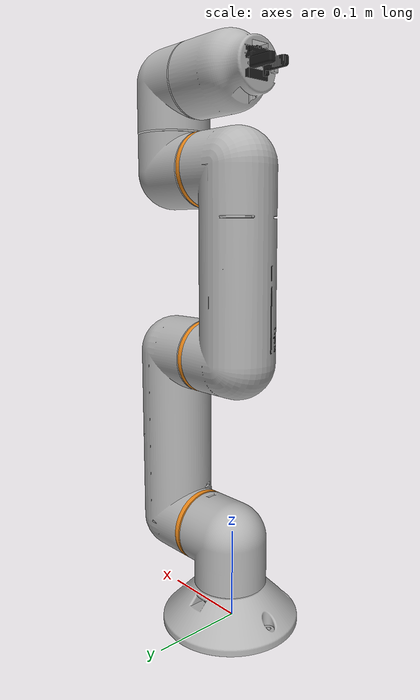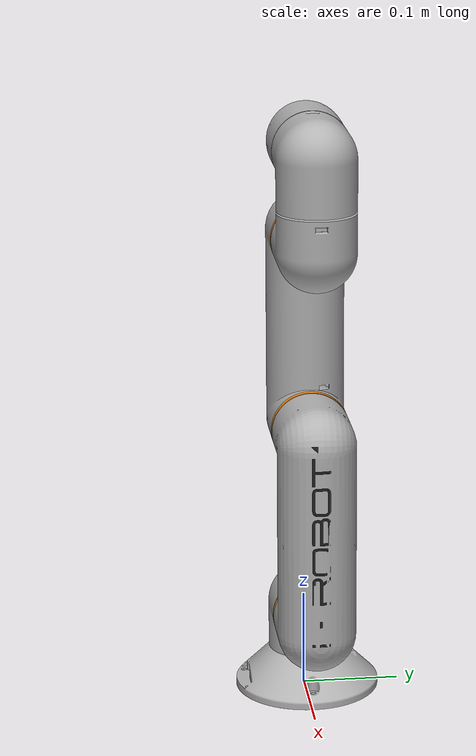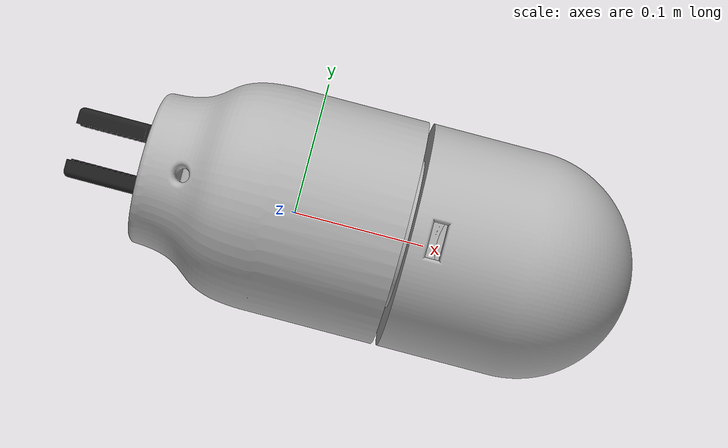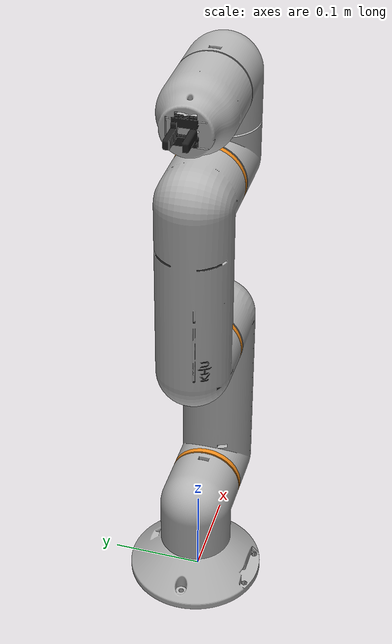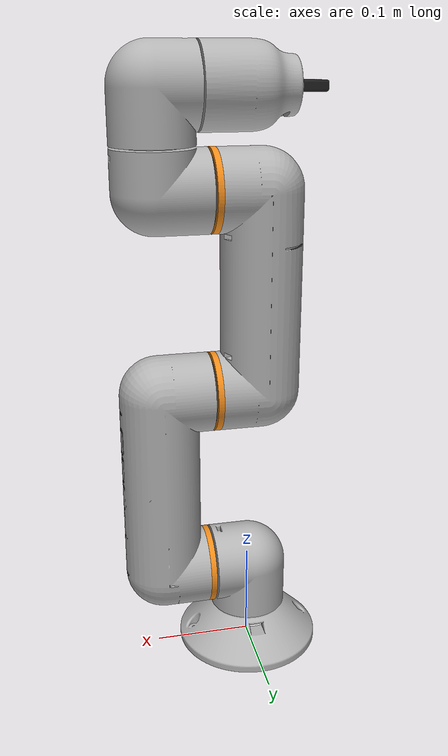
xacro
<?xml version="1.0" ?>
<robot name="6dof_gripper" xmlns:xacro="http://www.ros.org/wiki/xacro">

<xacro:include filename="$(find 6dof_description)/urdf/materials.xacro" />

<link name="base_link">
  <inertial>
    <origin xyz="0.0005722199975482752 0.004245800700454947 0.016568477430291967" rpy="0 0 0"/>
    <mass value="0.3701294923763933"/>
    <inertia ixx="0.000519" iyy="0.000543" izz="0.000945" ixy="3e-06" iyz="4e-06" ixz="0.0"/>
  </inertial>
  <visual>
    <origin xyz="0 0 0" rpy="0 0 0"/>
    <geometry>
      <mesh filename="package://6dof_description/meshes/base_link.stl" scale="0.001 0.001 0.001"/>
    </geometry>
    <material name="silver"/>
  </visual>
  <collision>
    <origin xyz="0 0 0" rpy="0 0 0"/>
    <geometry>
      <mesh filename="package://6dof_description/meshes/base_link.stl" scale="0.001 0.001 0.001"/>
    </geometry>
  </collision>
</link>

<link name="r_a_1">
  <inertial>
    <origin xyz="0.010425618761527602 0.0009926626669589911 0.03864859993028837" rpy="0 0 0"/>
    <mass value="0.17693816222578793"/>
    <inertia ixx="0.000227" iyy="0.000235" izz="0.00022" ixy="-1e-06" iyz="-1e-06" ixz="-2.3e-05"/>
  </inertial>
  <visual>
    <origin xyz="-0.0 -0.002984 -0.041554" rpy="0 0 0"/>
    <geometry>
      <mesh filename="package://6dof_description/meshes/r_a_1.stl" scale="0.001 0.001 0.001"/>
    </geometry>
    <material name="silver"/>
  </visual>
  <collision>
    <origin xyz="-0.0 -0.002984 -0.041554" rpy="0 0 0"/>
    <geometry>
      <mesh filename="package://6dof_description/meshes/r_a_1.stl" scale="0.001 0.001 0.001"/>
    </geometry>
  </collision>
</link>

<link name="link_1">
  <inertial>
    <origin xyz="0.0362299468747642 1.3495541677207516e-05 0.10093907219024545" rpy="0 0 0"/>
    <mass value="0.42379993240155933"/>
    <inertia ixx="0.003229" iyy="0.003244" izz="0.000556" ixy="0.0" iyz="0.0" ixz="4.5e-05"/>
  </inertial>
  <visual>
    <origin xyz="-0.04 -0.002984 -0.092054" rpy="0 0 0"/>
    <geometry>
      <mesh filename="package://6dof_description/meshes/link_1_engraved.stl" scale="0.001 0.001 0.001"/>
    </geometry>
    <material name="silver"/>
  </visual>
  <visual>
    <origin xyz="-0.04 -0.002984 -0.092054" rpy="0 0 0"/>
    <geometry>
      <mesh filename="package://6dof_description/meshes/link_1_engraving.stl" scale="0.001 0.001 0.001"/>
    </geometry>
    <material name="black"/>
  </visual>
  <visual>
    <origin xyz="-0.04 -0.002984 -0.092054" rpy="0 0 0"/>
    <geometry>
      <mesh filename="package://6dof_description/meshes/link_1_ring.stl" scale="0.001 0.001 0.001"/>
    </geometry>
    <material name="orange"/>
  </visual>
  <collision>
    <origin xyz="-0.04 -0.002984 -0.092054" rpy="0 0 0"/>
    <geometry>
      <mesh filename="package://6dof_description/meshes/link_1_engraved.stl" scale="0.001 0.001 0.001"/>
    </geometry>
  </collision>
  <collision>
    <origin xyz="-0.04 -0.002984 -0.092054" rpy="0 0 0"/>
    <geometry>
      <mesh filename="package://6dof_description/meshes/link_1_ring.stl" scale="0.001 0.001 0.001"/>
    </geometry>
  </collision>
</link>

<link name="link__1__1">
  <inertial>
    <origin xyz="-0.03622994687477521 -1.3274643730027368e-05 0.10093907219023918" rpy="0 0 0"/>
    <mass value="0.42379993240155933"/>
    <inertia ixx="0.003229" iyy="0.003244" izz="0.000556" ixy="0.0" iyz="-0.0" ixz="-4.5e-05"/>
  </inertial>
  <visual>
    <origin xyz="-0.04 -0.002984 -0.292054" rpy="0 0 0"/>
    <geometry>
      <mesh filename="package://6dof_description/meshes/link__1__1_engraved.stl" scale="0.001 0.001 0.001"/>
    </geometry>
    <material name="silver"/>
  </visual>
  <visual>
    <origin xyz="-0.04 -0.002984 -0.292054" rpy="0 0 0"/>
    <geometry>
      <mesh filename="package://6dof_description/meshes/link__1__1_engraving.stl" scale="0.001 0.001 0.001"/>
    </geometry>
    <material name="black"/>
  </visual>
  <visual>
    <origin xyz="-0.04 -0.002984 -0.292054" rpy="0 0 0"/>
    <geometry>
      <mesh filename="package://6dof_description/meshes/link__1__1_ring.stl" scale="0.001 0.001 0.001"/>
    </geometry>
    <material name="orange"/>
  </visual>
  <collision>
    <origin xyz="-0.04 -0.002984 -0.292054" rpy="0 0 0"/>
    <geometry>
      <mesh filename="package://6dof_description/meshes/link__1__1_engraved.stl" scale="0.001 0.001 0.001"/>
    </geometry>
  </collision>
  <collision>
    <origin xyz="-0.04 -0.002984 -0.292054" rpy="0 0 0"/>
    <geometry>
      <mesh filename="package://6dof_description/meshes/link__1__1_ring.stl" scale="0.001 0.001 0.001"/>
    </geometry>
  </collision>
</link>

<link name="r_a__1__1">
  <inertial>
    <origin xyz="0.03864887449338581 -0.0009924417690017292 0.010425344198421005" rpy="0 0 0"/>
    <mass value="0.17693816222578793"/>
    <inertia ixx="0.00022" iyy="0.000235" izz="0.000227" ixy="1e-06" iyz="1e-06" ixz="-2.3e-05"/>
  </inertial>
  <visual>
    <origin xyz="-0.04 -0.002984 -0.492054" rpy="0 0 0"/>
    <geometry>
      <mesh filename="package://6dof_description/meshes/r_a__1__1.stl" scale="0.001 0.001 0.001"/>
    </geometry>
    <material name="silver"/>
  </visual>
  <collision>
    <origin xyz="-0.04 -0.002984 -0.492054" rpy="0 0 0"/>
    <geometry>
      <mesh filename="package://6dof_description/meshes/r_a__1__1.stl" scale="0.001 0.001 0.001"/>
    </geometry>
  </collision>
</link>

<link name="r_a__2__1">
  <inertial>
    <origin xyz="-0.010425618761524535 -0.0009924417689934207 0.03864859993027925" rpy="0 0 0"/>
    <mass value="0.17693816222578793"/>
    <inertia ixx="0.000227" iyy="0.000235" izz="0.00022" ixy="-1e-06" iyz="1e-06" ixz="2.3e-05"/>
  </inertial>
  <visual>
    <origin xyz="-0.0905 -0.002984 -0.532054" rpy="0 0 0"/>
    <geometry>
      <mesh filename="package://6dof_description/meshes/r_a__2__1.stl" scale="0.001 0.001 0.001"/>
    </geometry>
    <material name="silver"/>
  </visual>
  <collision>
    <origin xyz="-0.0905 -0.002984 -0.532054" rpy="0 0 0"/>
    <geometry>
      <mesh filename="package://6dof_description/meshes/r_a__2__1.stl" scale="0.001 0.001 0.001"/>
    </geometry>
  </collision>
</link>

<link name="housing_1">
  <!-- housing_1.stl removed; fixed gripper (gripper.stl) on the same link, generated by pinch_sim.build_scene -->
  <inertial>
    <origin xyz="-0.045855 0.000223 -0.000017" rpy="0 0 0"/>
    <mass value="0.220000"/>
    <inertia ixx="0.000143708" iyy="0.000185703" izz="0.000184536" ixy="0.000001652" ixz="-0.000000424" iyz="0.000001042"/>
  </inertial>
  <visual>
    <origin xyz="0.063911 0.242590 0.114841" rpy="-1.570796 -0.000000 1.570796"/>
    <geometry>
      <mesh filename="package://6dof_description/meshes/gripper_body.stl" scale="0.001 0.001 0.001"/>
    </geometry>
    <material name="silver"/>
  </visual>
  <visual>
    <origin xyz="0.063911 0.242590 0.114841" rpy="-1.570796 -0.000000 1.570796"/>
    <geometry>
      <mesh filename="package://6dof_description/meshes/gripper_fingers.stl" scale="0.001 0.001 0.001"/>
    </geometry>
    <material name="black"/>
  </visual>
  <collision>
    <origin xyz="0.063911 0.242590 0.114841" rpy="-1.570796 -0.000000 1.570796"/>
    <geometry>
      <mesh filename="package://6dof_description/meshes/gripper.stl" scale="0.001 0.001 0.001"/>
    </geometry>
  </collision>
</link>

<joint name="Revolute_1" type="revolute">
  <origin xyz="0.0 0.002984 0.043554" rpy="0 0 0"/>
  <parent link="base_link"/>
  <child link="r_a_1"/>
  <axis xyz="0.0 0.0 1.0"/>
  <limit lower="-3.14159" upper="3.14159" effort="10.0" velocity="3.0"/>
</joint>

<joint name="Revolute_2" type="revolute">
  <origin xyz="0.042 0.0 0.0505" rpy="0 0 0"/>
  <parent link="r_a_1"/>
  <child link="link_1"/>
  <axis xyz="1.0 0.0 0.0"/>
  <limit lower="-3.14159" upper="3.14159" effort="10.0" velocity="3.0"/>
</joint>

<joint name="Revolute_3" type="revolute">
  <origin xyz="-0.002 0.0 0.2" rpy="0 0 0"/>
  <parent link="link_1"/>
  <child link="link__1__1"/>
  <axis xyz="-1.0 0.0 0.0"/>
  <limit lower="-3.14159" upper="3.14159" effort="10.0" velocity="3.0"/>
</joint>

<joint name="Revolute_4" type="revolute">
  <origin xyz="0.002 0.0 0.2" rpy="0 0 0"/>
  <parent link="link__1__1"/>
  <child link="r_a__1__1"/>
  <axis xyz="1.0 -0.0 -0.0"/>
  <limit lower="-3.14159" upper="3.14159" effort="10.0" velocity="3.0"/>
</joint>

<joint name="Revolute_5" type="revolute">
  <origin xyz="0.0505 0.0 0.042" rpy="0 0 0"/>
  <parent link="r_a__1__1"/>
  <child link="r_a__2__1"/>
  <axis xyz="0.0 0.0 1.0"/>
  <limit lower="-3.14159" upper="3.14159" effort="10.0" velocity="3.0"/>
</joint>

<joint name="Revolute_6" type="revolute">
  <origin xyz="-0.042 0.0 0.0505" rpy="0 0 0"/>
  <parent link="r_a__2__1"/>
  <child link="housing_1"/>
  <axis xyz="-1.0 0.0 -0.0"/>
  <limit lower="-3.14159" upper="3.14159" effort="10.0" velocity="3.0"/>
</joint>

</robot>

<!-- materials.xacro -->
<robot name="6dof" xmlns:xacro="http://www.ros.org/wiki/xacro" >

<material name="silver">
  <color rgba="0.700 0.700 0.700 1.000"/>
</material>

</robot>
